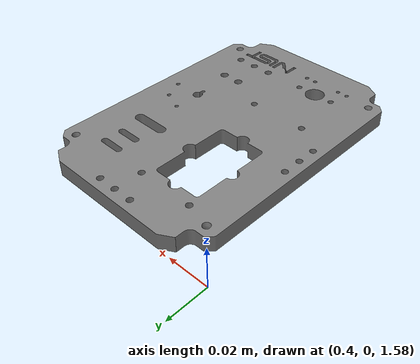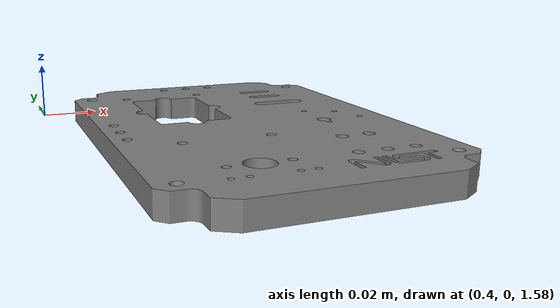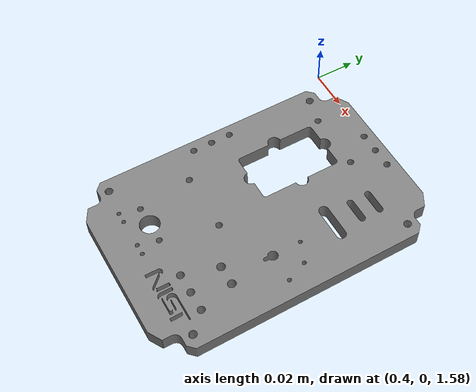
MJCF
<mujoco model="nist_ftc_09_layer">
  <default>
    <default class="nist_ftc_09_layer_visual">
      <geom group="2" type="mesh" contype="0" conaffinity="0"/>
    </default>
    <default class="nist_ftc_09_layer_collision">
      <geom group="3" type="mesh" density="3800" friction="0.95 0.3 0.1" solref="0.0001 1" solimp="0.998 0.998 0.0001" />
    </default>
  </default>
  <asset>
    <mesh name="nist_ftc_09_layer" file="../objects/bigym/nist_misc/nist_ftc_09_layer/nist_ftc_09_layer.obj" scale="0.0005 0.0026 0.0005"/>
    <mesh name="nist_ftc_09_layer_collision_0" file="../objects/bigym/nist_misc/nist_ftc_09_layer/nist_ftc_09_layer_collision_0.obj" scale="0.0005 0.0026 0.0005"/>
    <mesh name="nist_ftc_09_layer_collision_1" file="../objects/bigym/nist_misc/nist_ftc_09_layer/nist_ftc_09_layer_collision_1.obj" scale="0.0005 0.0026 0.0005"/>
    <mesh name="nist_ftc_09_layer_collision_2" file="../objects/bigym/nist_misc/nist_ftc_09_layer/nist_ftc_09_layer_collision_2.obj" scale="0.0005 0.0026 0.0005"/>
    <mesh name="nist_ftc_09_layer_collision_3" file="../objects/bigym/nist_misc/nist_ftc_09_layer/nist_ftc_09_layer_collision_3.obj" scale="0.0005 0.0026 0.0005"/>
    <mesh name="nist_ftc_09_layer_collision_4" file="../objects/bigym/nist_misc/nist_ftc_09_layer/nist_ftc_09_layer_collision_4.obj" scale="0.0005 0.0026 0.0005"/>
    <mesh name="nist_ftc_09_layer_collision_5" file="../objects/bigym/nist_misc/nist_ftc_09_layer/nist_ftc_09_layer_collision_5.obj" scale="0.0005 0.0026 0.0005"/>
    <mesh name="nist_ftc_09_layer_collision_6" file="../objects/bigym/nist_misc/nist_ftc_09_layer/nist_ftc_09_layer_collision_6.obj" scale="0.0005 0.0026 0.0005"/>
  </asset>
  <worldbody>
    <body name="nist_ftc_09_layer" pos="0.41 -0.0 1.58" quat="0.707 0.707 0 0">
      <freejoint/>
      <geom mesh="nist_ftc_09_layer" class="nist_ftc_09_layer_visual"/>
      <geom mesh="nist_ftc_09_layer_collision_0" rgba="0.8952938442613471 0.6002058384294193 0.1403581513098313 1" class="nist_ftc_09_layer_collision"/>
      <geom mesh="nist_ftc_09_layer_collision_1" rgba="0.8203242252573902 0.28467720724215884 0.6313412726973495 1" class="nist_ftc_09_layer_collision"/>
      <geom mesh="nist_ftc_09_layer_collision_2" rgba="0.16693422863428775 0.8997016349891971 0.28048938106971666 1" class="nist_ftc_09_layer_collision"/>
      <geom mesh="nist_ftc_09_layer_collision_3" rgba="0.6554999242930103 0.25106836439402835 0.8905914467331318 1" class="nist_ftc_09_layer_collision"/>
      <geom mesh="nist_ftc_09_layer_collision_4" rgba="0.18172510702817457 0.15857423758033495 0.6734094250384131 1" class="nist_ftc_09_layer_collision"/>
      <geom mesh="nist_ftc_09_layer_collision_5" rgba="0.3698476388104902 0.15131139870288135 0.33168952305012245 1" class="nist_ftc_09_layer_collision"/>
      <geom mesh="nist_ftc_09_layer_collision_6" rgba="0.7791433203667263 0.7758592139663634 0.9171441127645024 1" class="nist_ftc_09_layer_collision"/>
    </body>
  </worldbody>
</mujoco>
